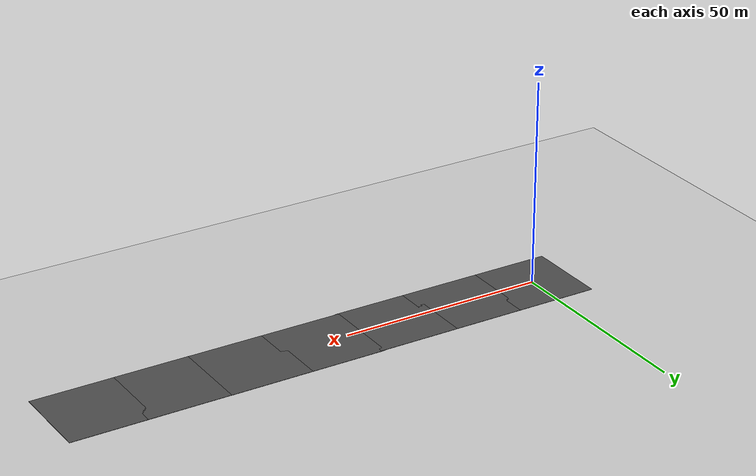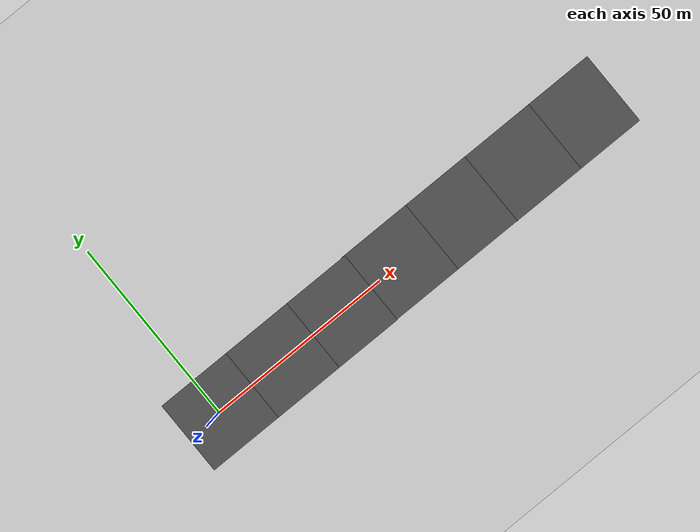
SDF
<sdf version="1.6">
 <world name="default">
  <light name="sun" type="directional">
   <pose>0 0 10 0 -0 0</pose>
   <diffuse>0.8 0.8 0.8 1</diffuse>
   <specular>0.2 0.2 0.2 1</specular>
   <attenuation>
    <range>1000</range>
    <constant>0.9</constant>
    <linear>0.01</linear>
    <quadratic>0.001</quadratic>
   </attenuation>
   <direction>-0.5 0.1 -0.9</direction>
  </light>
  <model name="ground_plane">
   <static>1</static>
   <link name="link">
    <collision name="collision">
     <geometry><plane><normal>0 0 1</normal><size>100 100</size></plane></geometry>
     <surface>
      <contact><collide_bitmask>65535</collide_bitmask></contact>
      <friction><ode><mu>100</mu><mu2>50</mu2></ode></friction>
     </surface>
    </collision>
    <visual name="visual">
     <cast_shadows>0</cast_shadows>
     <geometry><plane><normal>0 0 1</normal><size>100 100</size></plane></geometry>
     <material>
      <script><uri>file://media/materials/scripts/gazebo.material</uri><name>Gazebo/Grey</name></script>
     </material>
    </visual>
   </link>
  </model>
  <gravity>0 0 -9.8</gravity>
  <magnetic_field>6e-06 2.3e-05 -4.2e-05</magnetic_field>
  <atmosphere type="adiabatic"/>
  <physics name="default_physics" default="0" type="ode">
   <max_step_size>0.001</max_step_size>
   <real_time_factor>1</real_time_factor>
   <real_time_update_rate>1000</real_time_update_rate>
  </physics>
  <scene><ambient>0.4 0.4 0.4 1</ambient><background>0.7 0.7 0.7 1</background><shadows>1</shadows></scene>
  <audio><device>default</device></audio>
  <spherical_coordinates>
   <surface_model>EARTH_WGS84</surface_model>
   <latitude_deg>0</latitude_deg>
   <longitude_deg>0</longitude_deg>
   <elevation>0</elevation>
   <heading_deg>0</heading_deg>
  </spherical_coordinates>
  <model name="asphalt_plane">
   <static>1</static>
   <link name="link">
    <collision name="collision"><geometry><box><size>20 20 0.1</size></box></geometry></collision>
    <visual name="visual">
     <cast_shadows>0</cast_shadows>
     <geometry><box><size>20 20 0.1</size></box></geometry>
     <material>
      <script>
       <uri>model://asphalt_plane/materials/scripts</uri>
       <uri>model://asphalt_plane/materials/textures</uri>
       <name>vrc/asphalt</name>
      </script>
     </material>
    </visual>
   </link>
   <pose>0.232627 -0.039456 0 0 -0 0</pose>
  </model>
  <model name="asphalt_plane_0">
   <static>1</static>
   <link name="link">
    <collision name="collision"><geometry><box><size>20 20 0.1</size></box></geometry></collision>
    <visual name="visual">
     <cast_shadows>0</cast_shadows>
     <geometry><box><size>20 20 0.1</size></box></geometry>
     <material>
      <script>
       <uri>model://asphalt_plane/materials/scripts</uri>
       <uri>model://asphalt_plane/materials/textures</uri>
       <name>vrc/asphalt</name>
      </script>
     </material>
    </visual>
   </link>
   <pose>19.1817 -0.038601 0 0 -0 0</pose>
  </model>
  <model name="asphalt_plane_1">
   <static>1</static>
   <link name="link">
    <collision name="collision"><geometry><box><size>20 20 0.1</size></box></geometry></collision>
    <visual name="visual">
     <cast_shadows>0</cast_shadows>
     <geometry><box><size>20 20 0.1</size></box></geometry>
     <material>
      <script>
       <uri>model://asphalt_plane/materials/scripts</uri>
       <uri>model://asphalt_plane/materials/textures</uri>
       <name>vrc/asphalt</name>
      </script>
     </material>
    </visual>
   </link>
   <pose>37.306 -0.029538 0 0 -0 0</pose>
  </model>
  <model name="asphalt_plane_2">
   <static>1</static>
   <link name="link">
    <collision name="collision"><geometry><box><size>20 20 0.1</size></box></geometry></collision>
    <visual name="visual">
     <cast_shadows>0</cast_shadows>
     <geometry><box><size>20 20 0.1</size></box></geometry>
     <material>
      <script>
       <uri>model://asphalt_plane/materials/scripts</uri>
       <uri>model://asphalt_plane/materials/textures</uri>
       <name>vrc/asphalt</name>
      </script>
     </material>
    </visual>
   </link>
   <pose>56.3665 0.126847 0 0 -0 0</pose>
  </model>
  <model name="asphalt_plane_3">
   <static>1</static>
   <link name="link">
    <collision name="collision"><geometry><box><size>20 20 0.1</size></box></geometry></collision>
    <visual name="visual">
     <cast_shadows>0</cast_shadows>
     <geometry><box><size>20 20 0.1</size></box></geometry>
     <material>
      <script>
       <uri>model://asphalt_plane/materials/scripts</uri>
       <uri>model://asphalt_plane/materials/textures</uri>
       <name>vrc/asphalt</name>
      </script>
     </material>
    </visual>
   </link>
   <pose>74.765 0.120732 0 0 -0 0</pose>
  </model>
  <model name="asphalt_plane_4">
   <static>1</static>
   <link name="link">
    <collision name="collision"><geometry><box><size>20 20 0.1</size></box></geometry></collision>
    <visual name="visual">
     <cast_shadows>0</cast_shadows>
     <geometry><box><size>20 20 0.1</size></box></geometry>
     <material>
      <script>
       <uri>model://asphalt_plane/materials/scripts</uri>
       <uri>model://asphalt_plane/materials/textures</uri>
       <name>vrc/asphalt</name>
      </script>
     </material>
    </visual>
   </link>
   <pose>94.6313 0.086164 0 0 -0 0</pose>
  </model>
  <model name="asphalt_plane_5">
   <static>1</static>
   <link name="link">
    <collision name="collision"><geometry><box><size>20 20 0.1</size></box></geometry></collision>
    <visual name="visual">
     <cast_shadows>0</cast_shadows>
     <geometry><box><size>20 20 0.1</size></box></geometry>
     <material>
      <script>
       <uri>model://asphalt_plane/materials/scripts</uri>
       <uri>model://asphalt_plane/materials/textures</uri>
       <name>vrc/asphalt</name>
      </script>
     </material>
    </visual>
   </link>
   <pose>112.848 0.100164 0 0 -0 0</pose>
  </model>
 </world>
</sdf>
